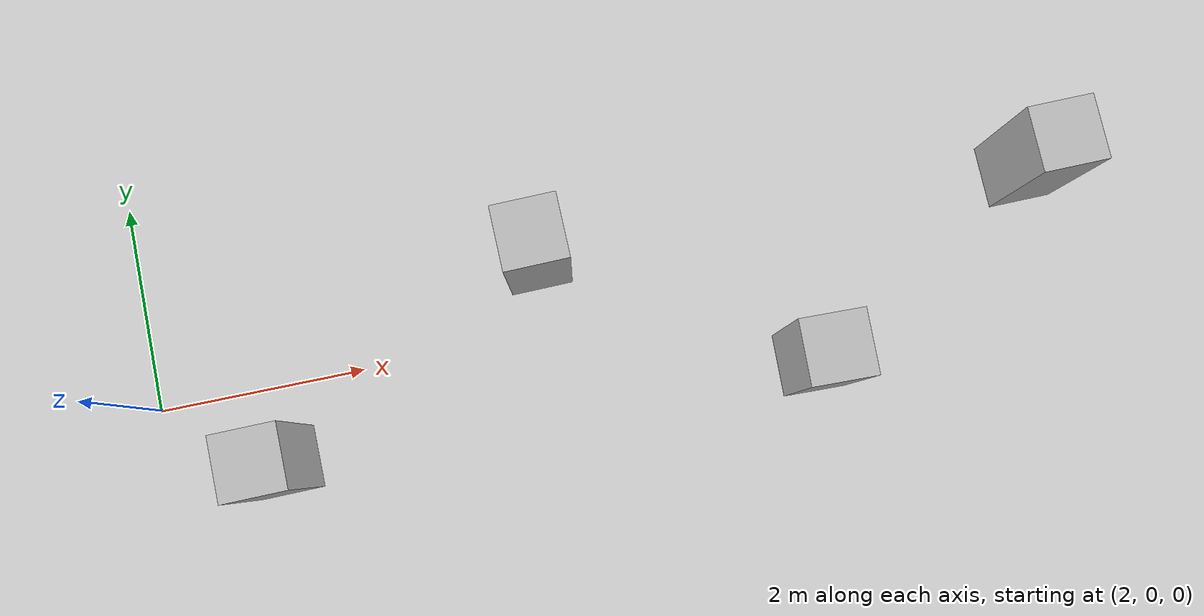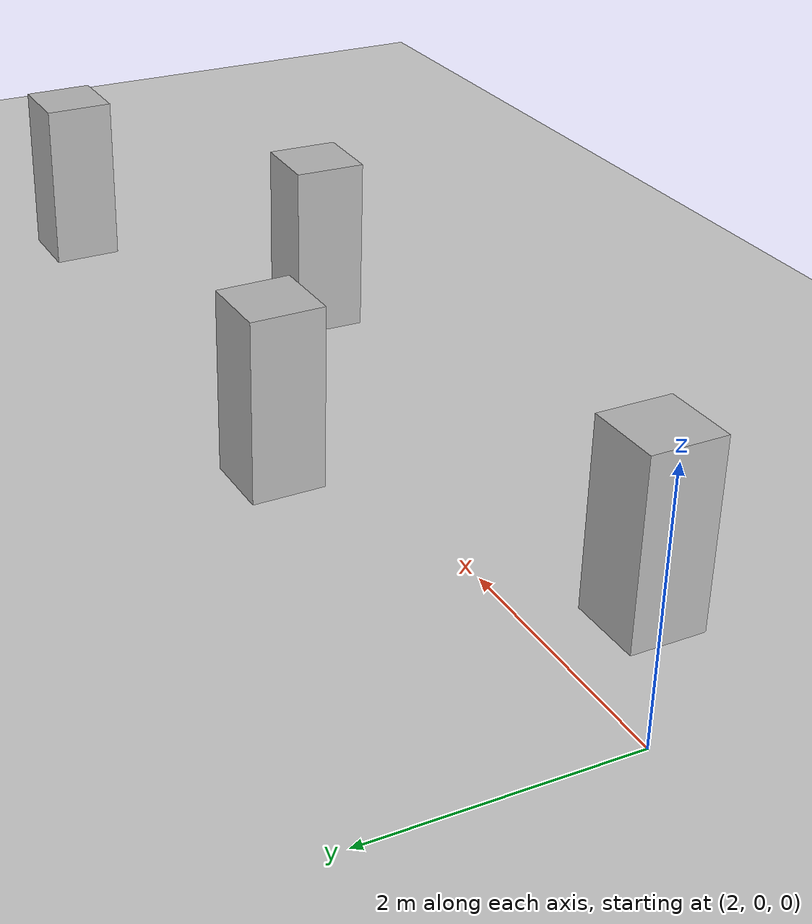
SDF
<?xml version="1.0"?>
<sdf version="1.6">
  <world name="v2-04g-r5-static-s5128">
    <gravity>0 0 -9.81</gravity>
    <physics name="v2_deterministic" type="ode">
      <max_step_size>0.002</max_step_size>
      <real_time_update_rate>500</real_time_update_rate>
    </physics>
    <include>
      <uri>model://sun</uri>
    </include>
    <include>
      <uri>model://ground_plane</uri>
    </include>
    <model name="pillar-1">
      <static>true</static>
      <pose>3.121801606 -0.732264216 0.750000000 0 0 0.012286309</pose>
      <link name="link">
        <collision name="collision">
          <geometry>
            <box>
              <size>0.600000 0.600000 1.500000</size>
            </box>
          </geometry>
        </collision>
        <visual name="visual">
          <geometry>
            <box>
              <size>0.600000 0.600000 1.500000</size>
            </box>
          </geometry>
        </visual>
      </link>
    </model>
    <model name="pillar-2">
      <static>true</static>
      <pose>5.851022698 0.738730755 0.750000000 0 0 0.020055391</pose>
      <link name="link">
        <collision name="collision">
          <geometry>
            <box>
              <size>0.600000 0.600000 1.500000</size>
            </box>
          </geometry>
        </collision>
        <visual name="visual">
          <geometry>
            <box>
              <size>0.600000 0.600000 1.500000</size>
            </box>
          </geometry>
        </visual>
      </link>
    </model>
    <model name="pillar-3">
      <static>true</static>
      <pose>8.256484407 -0.775959758 0.750000000 0 0 -0.023716977</pose>
      <link name="link">
        <collision name="collision">
          <geometry>
            <box>
              <size>0.600000 0.600000 1.500000</size>
            </box>
          </geometry>
        </collision>
        <visual name="visual">
          <geometry>
            <box>
              <size>0.600000 0.600000 1.500000</size>
            </box>
          </geometry>
        </visual>
      </link>
    </model>
    <model name="pillar-4">
      <static>true</static>
      <pose>10.649835512 0.654652176 0.750000000 0 0 0.012165964</pose>
      <link name="link">
        <collision name="collision">
          <geometry>
            <box>
              <size>0.600000 0.600000 1.500000</size>
            </box>
          </geometry>
        </collision>
        <visual name="visual">
          <geometry>
            <box>
              <size>0.600000 0.600000 1.500000</size>
            </box>
          </geometry>
        </visual>
      </link>
    </model>
  </world>
</sdf>
